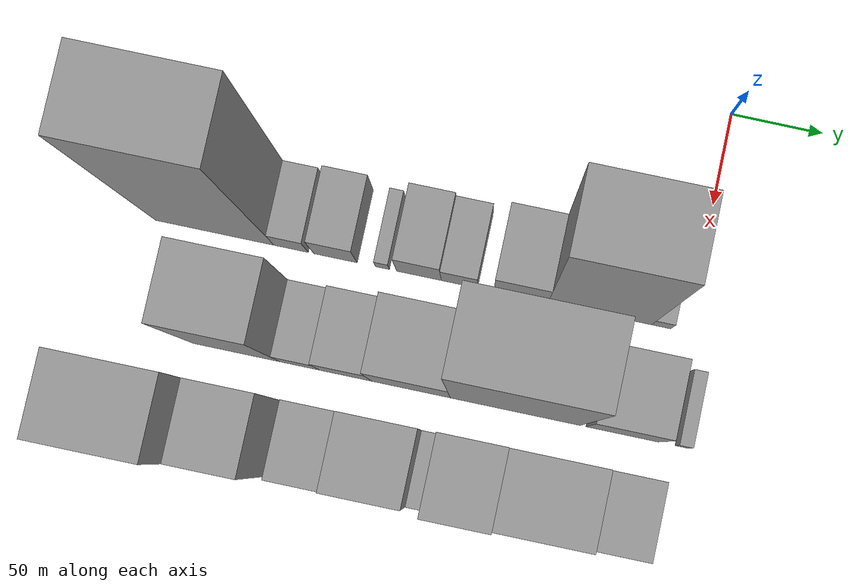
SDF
<sdf version="1.6">
 <world name="default">
  <model name="building_8">
   <static>1</static>
   <pose>100.0000 -256.8189 0 0.000000 0.000000 0.000000</pose>
   <link name="link">
    <pose>0 0 103.50 0 0 0</pose>
    <collision name="collision"><geometry><box><size>40.0000 64.8049 207.0000</size></box></geometry></collision>
    <visual name="visual">
     <cast_shadows>0</cast_shadows>
     <geometry><box><size>40.0000 64.8049 207.0000</size></box></geometry>
     <material>
      <script>
       <uri>model://grey_wall/materials/scripts</uri>
       <uri>model://grey_wall/materials/textures</uri>
       <name>vrc/grey_wall</name>
      </script>
     </material>
    </visual>
   </link>
  </model>
  <model name="building_9">
   <static>1</static>
   <pose>100.0000 -215.1437 0 0.000000 0.000000 0.000000</pose>
   <link name="link">
    <pose>0 0 16.50 0 0 0</pose>
    <collision name="collision"><geometry><box><size>40.0000 18.5455 33.0000</size></box></geometry></collision>
    <visual name="visual">
     <cast_shadows>0</cast_shadows>
     <geometry><box><size>40.0000 18.5455 33.0000</size></box></geometry>
     <material>
      <script>
       <uri>model://grey_wall/materials/scripts</uri>
       <uri>model://grey_wall/materials/textures</uri>
       <name>vrc/grey_wall</name>
      </script>
     </material>
    </visual>
   </link>
  </model>
  <model name="building_10">
   <static>1</static>
   <pose>100.0000 -191.0404 0 0.000000 0.000000 0.000000</pose>
   <link name="link">
    <pose>0 0 21.00 0 0 0</pose>
    <collision name="collision"><geometry><box><size>40.0000 23.6610 42.0000</size></box></geometry></collision>
    <visual name="visual">
     <cast_shadows>0</cast_shadows>
     <geometry><box><size>40.0000 23.6610 42.0000</size></box></geometry>
     <material>
      <script>
       <uri>model://grey_wall/materials/scripts</uri>
       <uri>model://grey_wall/materials/textures</uri>
       <name>vrc/grey_wall</name>
      </script>
     </material>
    </visual>
   </link>
  </model>
  <model name="building_11">
   <static>1</static>
   <pose>100.0000 -165.4603 0 0.000000 0.000000 0.000000</pose>
   <link name="link">
    <pose>0 0 9.00 0 0 0</pose>
    <collision name="collision"><geometry><box><size>40.0000 7.4993 18.0000</size></box></geometry></collision>
    <visual name="visual">
     <cast_shadows>0</cast_shadows>
     <geometry><box><size>40.0000 7.4993 18.0000</size></box></geometry>
     <material>
      <script>
       <uri>model://grey_wall/materials/scripts</uri>
       <uri>model://grey_wall/materials/textures</uri>
       <name>vrc/grey_wall</name>
      </script>
     </material>
    </visual>
   </link>
  </model>
  <model name="building_12">
   <static>1</static>
   <pose>100.0000 -145.5860 0 0.000000 0.000000 0.000000</pose>
   <link name="link">
    <pose>0 0 22.50 0 0 0</pose>
    <collision name="collision"><geometry><box><size>40.0000 24.2491 45.0000</size></box></geometry></collision>
    <visual name="visual">
     <cast_shadows>0</cast_shadows>
     <geometry><box><size>40.0000 24.2491 45.0000</size></box></geometry>
     <material>
      <script>
       <uri>model://grey_wall/materials/scripts</uri>
       <uri>model://grey_wall/materials/textures</uri>
       <name>vrc/grey_wall</name>
      </script>
     </material>
    </visual>
   </link>
  </model>
  <model name="building_13">
   <static>1</static>
   <pose>100.0000 -123.6459 0 0.000000 0.000000 0.000000</pose>
   <link name="link">
    <pose>0 0 18.00 0 0 0</pose>
    <collision name="collision"><geometry><box><size>40.0000 19.6311 36.0000</size></box></geometry></collision>
    <visual name="visual">
     <cast_shadows>0</cast_shadows>
     <geometry><box><size>40.0000 19.6311 36.0000</size></box></geometry>
     <material>
      <script>
       <uri>model://grey_wall/materials/scripts</uri>
       <uri>model://grey_wall/materials/textures</uri>
       <name>vrc/grey_wall</name>
      </script>
     </material>
    </visual>
   </link>
  </model>
  <model name="building_14">
   <static>1</static>
   <pose>100.0000 -90.2637 0 0.000000 0.000000 0.000000</pose>
   <link name="link">
    <pose>0 0 25.50 0 0 0</pose>
    <collision name="collision"><geometry><box><size>40.0000 29.1333 51.0000</size></box></geometry></collision>
    <visual name="visual">
     <cast_shadows>0</cast_shadows>
     <geometry><box><size>40.0000 29.1333 51.0000</size></box></geometry>
     <material>
      <script>
       <uri>model://grey_wall/materials/scripts</uri>
       <uri>model://grey_wall/materials/textures</uri>
       <name>vrc/grey_wall</name>
      </script>
     </material>
    </visual>
   </link>
  </model>
  <model name="building_15">
   <static>1</static>
   <pose>100.0000 -47.6259 0 0.000000 0.000000 0.000000</pose>
   <link name="link">
    <pose>0 0 90.00 0 0 0</pose>
    <collision name="collision"><geometry><box><size>40.0000 56.1424 180.0000</size></box></geometry></collision>
    <visual name="visual">
     <cast_shadows>0</cast_shadows>
     <geometry><box><size>40.0000 56.1424 180.0000</size></box></geometry>
     <material>
      <script>
       <uri>model://grey_wall/materials/scripts</uri>
       <uri>model://grey_wall/materials/textures</uri>
       <name>vrc/grey_wall</name>
      </script>
     </material>
    </visual>
   </link>
  </model>
  <model name="building_16">
   <static>1</static>
   <pose>100.0000 -14.3645 0 0.000000 0.000000 0.000000</pose>
   <link name="link">
    <pose>0 0 10.50 0 0 0</pose>
    <collision name="collision"><geometry><box><size>40.0000 10.3804 21.0000</size></box></geometry></collision>
    <visual name="visual">
     <cast_shadows>0</cast_shadows>
     <geometry><box><size>40.0000 10.3804 21.0000</size></box></geometry>
     <material>
      <script>
       <uri>model://grey_wall/materials/scripts</uri>
       <uri>model://grey_wall/materials/textures</uri>
       <name>vrc/grey_wall</name>
      </script>
     </material>
    </visual>
   </link>
  </model>
  <model name="building_44">
   <static>1</static>
   <pose>160.0000 -231.0679 0 0.000000 0.000000 0.000000</pose>
   <link name="link">
    <pose>0 0 60.00 0 0 0</pose>
    <collision name="collision"><geometry><box><size>40.0000 46.8989 120.0000</size></box></geometry></collision>
    <visual name="visual">
     <cast_shadows>0</cast_shadows>
     <geometry><box><size>40.0000 46.8989 120.0000</size></box></geometry>
     <material>
      <script>
       <uri>model://grey_wall/materials/scripts</uri>
       <uri>model://grey_wall/materials/textures</uri>
       <name>vrc/grey_wall</name>
      </script>
     </material>
    </visual>
   </link>
  </model>
  <model name="building_45">
   <static>1</static>
   <pose>160.0000 -196.9596 0 0.000000 0.000000 0.000000</pose>
   <link name="link">
    <pose>0 0 19.50 0 0 0</pose>
    <collision name="collision"><geometry><box><size>40.0000 21.3179 39.0000</size></box></geometry></collision>
    <visual name="visual">
     <cast_shadows>0</cast_shadows>
     <geometry><box><size>40.0000 21.3179 39.0000</size></box></geometry>
     <material>
      <script>
       <uri>model://grey_wall/materials/scripts</uri>
       <uri>model://grey_wall/materials/textures</uri>
       <name>vrc/grey_wall</name>
      </script>
     </material>
    </visual>
   </link>
  </model>
  <model name="building_46">
   <static>1</static>
   <pose>160.0000 -172.2539 0 0.000000 0.000000 0.000000</pose>
   <link name="link">
    <pose>0 0 25.50 0 0 0</pose>
    <collision name="collision"><geometry><box><size>40.0000 28.0935 51.0000</size></box></geometry></collision>
    <visual name="visual">
     <cast_shadows>0</cast_shadows>
     <geometry><box><size>40.0000 28.0935 51.0000</size></box></geometry>
     <material>
      <script>
       <uri>model://grey_wall/materials/scripts</uri>
       <uri>model://grey_wall/materials/textures</uri>
       <name>vrc/grey_wall</name>
      </script>
     </material>
    </visual>
   </link>
  </model>
  <model name="building_47">
   <static>1</static>
   <pose>160.0000 -136.9309 0 0.000000 0.000000 0.000000</pose>
   <link name="link">
    <pose>0 0 37.50 0 0 0</pose>
    <collision name="collision"><geometry><box><size>40.0000 42.5526 75.0000</size></box></geometry></collision>
    <visual name="visual">
     <cast_shadows>0</cast_shadows>
     <geometry><box><size>40.0000 42.5526 75.0000</size></box></geometry>
     <material>
      <script>
       <uri>model://grey_wall/materials/scripts</uri>
       <uri>model://grey_wall/materials/textures</uri>
       <name>vrc/grey_wall</name>
      </script>
     </material>
    </visual>
   </link>
  </model>
  <model name="building_48">
   <static>1</static>
   <pose>160.0000 -80.7195 0 0.000000 0.000000 0.000000</pose>
   <link name="link">
    <pose>0 0 97.50 0 0 0</pose>
    <collision name="collision"><geometry><box><size>40.0000 69.8701 195.0000</size></box></geometry></collision>
    <visual name="visual">
     <cast_shadows>0</cast_shadows>
     <geometry><box><size>40.0000 69.8701 195.0000</size></box></geometry>
     <material>
      <script>
       <uri>model://grey_wall/materials/scripts</uri>
       <uri>model://grey_wall/materials/textures</uri>
       <name>vrc/grey_wall</name>
      </script>
     </material>
    </visual>
   </link>
  </model>
  <model name="building_49">
   <static>1</static>
   <pose>160.0000 -23.3285 0 0.000000 0.000000 0.000000</pose>
   <link name="link">
    <pose>0 0 34.50 0 0 0</pose>
    <collision name="collision"><geometry><box><size>40.0000 38.9121 69.0000</size></box></geometry></collision>
    <visual name="visual">
     <cast_shadows>0</cast_shadows>
     <geometry><box><size>40.0000 38.9121 69.0000</size></box></geometry>
     <material>
      <script>
       <uri>model://grey_wall/materials/scripts</uri>
       <uri>model://grey_wall/materials/textures</uri>
       <name>vrc/grey_wall</name>
      </script>
     </material>
    </visual>
   </link>
  </model>
  <model name="building_50">
   <static>1</static>
   <pose>160.0000 8.7898 0 0.000000 0.000000 0.000000</pose>
   <link name="link">
    <pose>0 0 9.00 0 0 0</pose>
    <collision name="collision"><geometry><box><size>40.0000 7.3244 18.0000</size></box></geometry></collision>
    <visual name="visual">
     <cast_shadows>0</cast_shadows>
     <geometry><box><size>40.0000 7.3244 18.0000</size></box></geometry>
     <material>
      <script>
       <uri>model://grey_wall/materials/scripts</uri>
       <uri>model://grey_wall/materials/textures</uri>
       <name>vrc/grey_wall</name>
      </script>
     </material>
    </visual>
   </link>
  </model>
  <model name="building_74">
   <static>1</static>
   <pose>220.0000 -261.2516 0 0.000000 0.000000 0.000000</pose>
   <link name="link">
    <pose>0 0 75.00 0 0 0</pose>
    <collision name="collision"><geometry><box><size>40.0000 52.1775 150.0000</size></box></geometry></collision>
    <visual name="visual">
     <cast_shadows>0</cast_shadows>
     <geometry><box><size>40.0000 52.1775 150.0000</size></box></geometry>
     <material>
      <script>
       <uri>model://grey_wall/materials/scripts</uri>
       <uri>model://grey_wall/materials/textures</uri>
       <name>vrc/grey_wall</name>
      </script>
     </material>
    </visual>
   </link>
  </model>
  <model name="building_75">
   <static>1</static>
   <pose>220.0000 -217.9163 0 0.000000 0.000000 0.000000</pose>
   <link name="link">
    <pose>0 0 52.50 0 0 0</pose>
    <collision name="collision"><geometry><box><size>40.0000 34.4932 105.0000</size></box></geometry></collision>
    <visual name="visual">
     <cast_shadows>0</cast_shadows>
     <geometry><box><size>40.0000 34.4932 105.0000</size></box></geometry>
     <material>
      <script>
       <uri>model://grey_wall/materials/scripts</uri>
       <uri>model://grey_wall/materials/textures</uri>
       <name>vrc/grey_wall</name>
      </script>
     </material>
    </visual>
   </link>
  </model>
  <model name="building_76">
   <static>1</static>
   <pose>220.0000 -181.3988 0 0.000000 0.000000 0.000000</pose>
   <link name="link">
    <pose>0 0 28.50 0 0 0</pose>
    <collision name="collision"><geometry><box><size>40.0000 28.5417 57.0000</size></box></geometry></collision>
    <visual name="visual">
     <cast_shadows>0</cast_shadows>
     <geometry><box><size>40.0000 28.5417 57.0000</size></box></geometry>
     <material>
      <script>
       <uri>model://grey_wall/materials/scripts</uri>
       <uri>model://grey_wall/materials/textures</uri>
       <name>vrc/grey_wall</name>
      </script>
     </material>
    </visual>
   </link>
  </model>
  <model name="building_77">
   <static>1</static>
   <pose>220.0000 -146.6669 0 0.000000 0.000000 0.000000</pose>
   <link name="link">
    <pose>0 0 34.50 0 0 0</pose>
    <collision name="collision"><geometry><box><size>40.0000 40.9222 69.0000</size></box></geometry></collision>
    <visual name="visual">
     <cast_shadows>0</cast_shadows>
     <geometry><box><size>40.0000 40.9222 69.0000</size></box></geometry>
     <material>
      <script>
       <uri>model://grey_wall/materials/scripts</uri>
       <uri>model://grey_wall/materials/textures</uri>
       <name>vrc/grey_wall</name>
      </script>
     </material>
    </visual>
   </link>
  </model>
  <model name="building_78">
   <static>1</static>
   <pose>220.0000 -121.0985 0 0.000000 0.000000 0.000000</pose>
   <link name="link">
    <pose>0 0 10.50 0 0 0</pose>
    <collision name="collision"><geometry><box><size>40.0000 10.2146 21.0000</size></box></geometry></collision>
    <visual name="visual">
     <cast_shadows>0</cast_shadows>
     <geometry><box><size>40.0000 10.2146 21.0000</size></box></geometry>
     <material>
      <script>
       <uri>model://grey_wall/materials/scripts</uri>
       <uri>model://grey_wall/materials/textures</uri>
       <name>vrc/grey_wall</name>
      </script>
     </material>
    </visual>
   </link>
  </model>
  <model name="building_79">
   <static>1</static>
   <pose>220.0000 -99.0136 0 0.000000 0.000000 0.000000</pose>
   <link name="link">
    <pose>0 0 54.00 0 0 0</pose>
    <collision name="collision"><geometry><box><size>40.0000 33.9552 108.0000</size></box></geometry></collision>
    <visual name="visual">
     <cast_shadows>0</cast_shadows>
     <geometry><box><size>40.0000 33.9552 108.0000</size></box></geometry>
     <material>
      <script>
       <uri>model://grey_wall/materials/scripts</uri>
       <uri>model://grey_wall/materials/textures</uri>
       <name>vrc/grey_wall</name>
      </script>
     </material>
    </visual>
   </link>
  </model>
  <model name="building_80">
   <static>1</static>
   <pose>220.0000 -57.1610 0 0.000000 0.000000 0.000000</pose>
   <link name="link">
    <pose>0 0 43.50 0 0 0</pose>
    <collision name="collision"><geometry><box><size>40.0000 49.7501 87.0000</size></box></geometry></collision>
    <visual name="visual">
     <cast_shadows>0</cast_shadows>
     <geometry><box><size>40.0000 49.7501 87.0000</size></box></geometry>
     <material>
      <script>
       <uri>model://grey_wall/materials/scripts</uri>
       <uri>model://grey_wall/materials/textures</uri>
       <name>vrc/grey_wall</name>
      </script>
     </material>
    </visual>
   </link>
  </model>
  <model name="building_81">
   <static>1</static>
   <pose>220.0000 -17.0202 0 0.000000 0.000000 0.000000</pose>
   <link name="link">
    <pose>0 0 28.50 0 0 0</pose>
    <collision name="collision"><geometry><box><size>40.0000 30.5315 57.0000</size></box></geometry></collision>
    <visual name="visual">
     <cast_shadows>0</cast_shadows>
     <geometry><box><size>40.0000 30.5315 57.0000</size></box></geometry>
     <material>
      <script>
       <uri>model://grey_wall/materials/scripts</uri>
       <uri>model://grey_wall/materials/textures</uri>
       <name>vrc/grey_wall</name>
      </script>
     </material>
    </visual>
   </link>
  </model>
 </world>
</sdf>
